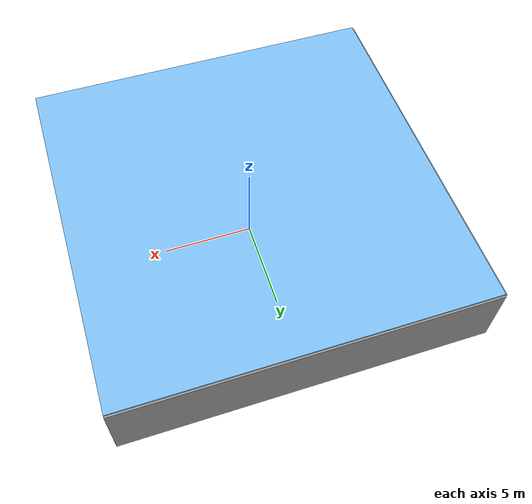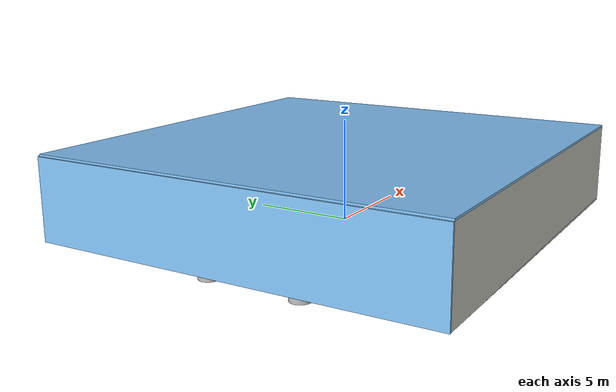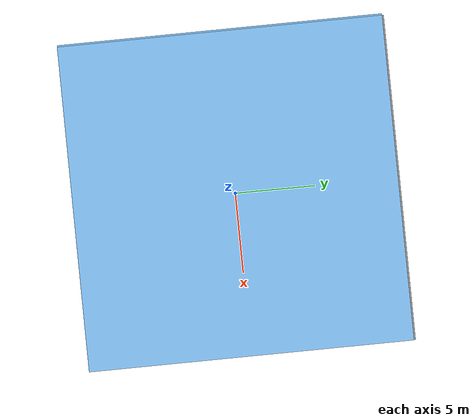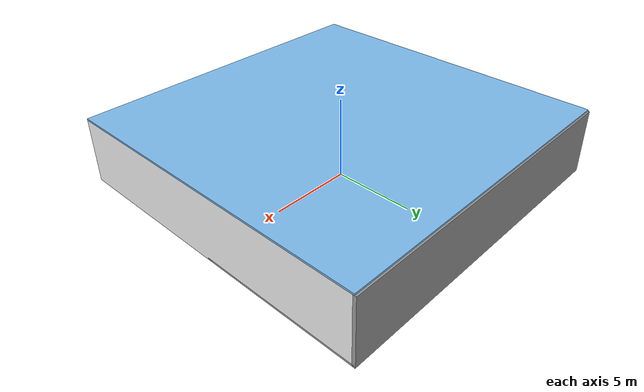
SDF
<sdf version="1.4">
 <world name="default">
  <physics type="ode">
   <max_step_size>0.001</max_step_size>
   <real_time_factor>1</real_time_factor>
   <real_time_update_rate>1000</real_time_update_rate>
   <gravity>0 0 -9.8</gravity>
  </physics>
  <scene><ambient>0.4 0.4 0.4 1</ambient><background>0.7 0.7 0.7 1</background><shadows>1</shadows></scene>
  <model name="Surrounding">
   <static>1</static>
   <link name="Ceiling">
    <collision name="Ceiling_Collision"><geometry><box><size>20 20 0.1</size></box></geometry></collision>
    <visual name="Ceiling_Visual">
     <geometry><box><size>20 20 0.1</size></box></geometry>
     <material>
      <script><uri>file://media/materials/scripts/gazebo.material</uri><name>Gazebo/SkyBlue</name></script>
     </material>
    </visual>
    <pose>0 0 4.05 0 0 0</pose>
   </link>
   <link name="Wall_South">
    <collision name="Wall_South_Collision">
     <geometry><box><size>20 0 4</size></box></geometry>
     <pose>0 0 2 0 -0 0</pose>
    </collision>
    <visual name="Wall_South_Visual">
     <pose>0 0 2 0 -0 0</pose>
     <geometry><box><size>20 0 4</size></box></geometry>
     <material>
      <script><uri>file://media/materials/scripts/gazebo.material</uri><name>Gazebo/PaintedWall</name></script>
     </material>
    </visual>
    <velocity_decay><linear>0</linear><angular>0</angular></velocity_decay>
    <pose>0 -10 0 0 -0 0</pose>
   </link>
   <link name="Wall_East">
    <collision name="Wall_21_Collision">
     <geometry><box><size>20 0 4</size></box></geometry>
     <pose>0 0 2 0 -0 0</pose>
    </collision>
    <visual name="Wall_21_Visual">
     <pose>0 0 2 0 -0 0</pose>
     <geometry><box><size>20 0 4</size></box></geometry>
     <material>
      <script><uri>file://media/materials/scripts/gazebo.material</uri><name>Gazebo/White</name></script>
     </material>
    </visual>
    <velocity_decay><linear>0</linear><angular>0</angular></velocity_decay>
    <pose>10 0 0 0 -0 1.5708</pose>
   </link>
   <link name="Wall_North">
    <collision name="Wall_22_Collision">
     <geometry><box><size>20 0.2 4</size></box></geometry>
     <pose>0 0 2 0 -0 0</pose>
    </collision>
    <visual name="Wall_22_Visual">
     <pose>0 0 2 0 -0 0</pose>
     <geometry><box><size>20 0.2 4</size></box></geometry>
     <material>
      <script><uri>file://media/materials/scripts/gazebo.material</uri><name>Gazebo/GreyGradientSky</name></script>
     </material>
    </visual>
    <velocity_decay><linear>0</linear><angular>0</angular></velocity_decay>
    <pose>0 10 0 0 -0 0</pose>
   </link>
   <link name="Wall_West">
    <collision name="Wall_23_Collision">
     <geometry><box><size>20 0.2 4</size></box></geometry>
     <pose>0 0 2 0 -0 0</pose>
    </collision>
    <visual name="Wall_23_Visual">
     <pose>0 0 2 0 -0 0</pose>
     <geometry><box><size>20 0.2 4</size></box></geometry>
     <material>
      <script><uri>file://media/materials/scripts/gazebo.material</uri><name>Gazebo/SkyBlue</name></script>
     </material>
    </visual>
    <velocity_decay><linear>0</linear><angular>0</angular></velocity_decay>
    <pose>-10 0 0 0 0 -1.5708</pose>
   </link>
   <link name="Ground_link">
    <collision name="collision">
     <pose>0 0 .05 0 -0 0</pose>
     <geometry><box><size>20 20 0.1</size></box></geometry>
    </collision>
    <visual name="visual">
     <pose>0 0 .05 0 -0 0</pose>
     <geometry><box><size>20 20 0.1</size></box></geometry>
     <material>
      <script><uri>file://media/materials/scripts/gazebo.material</uri><name>Gazebo/Pioneer2Body</name></script>
     </material>
    </visual>
   </link>
   <static>1</static>
  </model>
  <spherical_coordinates>
   <surface_model>EARTH_WGS84</surface_model>
   <latitude_deg>0</latitude_deg>
   <longitude_deg>0</longitude_deg>
   <elevation>0</elevation>
   <heading_deg>0</heading_deg>
  </spherical_coordinates>
  <light name="lightball_0" type="diffuse">
   <diffuse>0.8 0.8 0.8 1</diffuse>
   <specular>0.2 0.2 0.2 1</specular>
   <attenuation>
    <range>100</range>
    <constant>0.7</constant>
    <linear>0.01</linear>
    <quadratic>0.001</quadratic>
   </attenuation>
   <direction>-0.5 0.1 -0.9</direction>
   <pose>9.4064352724 -4.30691410417 3.50848807262 0 0 0</pose>
  </light>
  <light name="lightball_1" type="diffuse">
   <diffuse>0.8 0.8 0.8 1</diffuse>
   <specular>0.2 0.2 0.2 1</specular>
   <attenuation>
    <range>100</range>
    <constant>0.7</constant>
    <linear>0.01</linear>
    <quadratic>0.001</quadratic>
   </attenuation>
   <direction>-0.5 0.1 -0.9</direction>
   <pose>-3.60749167911 -9.89305549551 2.10619852579 0 0 0</pose>
  </light>
  <light name="lightball_2" type="diffuse">
   <diffuse>0.8 0.8 0.8 1</diffuse>
   <specular>0.2 0.2 0.2 1</specular>
   <attenuation>
    <range>100</range>
    <constant>0.7</constant>
    <linear>0.01</linear>
    <quadratic>0.001</quadratic>
   </attenuation>
   <direction>-0.5 0.1 -0.9</direction>
   <pose>-0.595712380519 3.15574577899 0.684177313892 0 0 0</pose>
  </light>
  <light name="lightball_3" type="diffuse">
   <diffuse>0.8 0.8 0.8 1</diffuse>
   <specular>0.2 0.2 0.2 1</specular>
   <attenuation>
    <range>100</range>
    <constant>0.7</constant>
    <linear>0.01</linear>
    <quadratic>0.001</quadratic>
   </attenuation>
   <direction>-0.5 0.1 -0.9</direction>
   <pose>5.2581092151 6.96199915286 1.08074415289 0 0 0</pose>
  </light>
  <light name="lightball_4" type="diffuse">
   <diffuse>0.8 0.8 0.8 1</diffuse>
   <specular>0.2 0.2 0.2 1</specular>
   <attenuation>
    <range>100</range>
    <constant>0.7</constant>
    <linear>0.01</linear>
    <quadratic>0.001</quadratic>
   </attenuation>
   <direction>-0.5 0.1 -0.9</direction>
   <pose>-4.78838077839 -5.62146463617 3.80996129651 0 0 0</pose>
  </light>
  <light name="lightball_5" type="diffuse">
   <diffuse>0.8 0.8 0.8 1</diffuse>
   <specular>0.2 0.2 0.2 1</specular>
   <attenuation>
    <range>100</range>
    <constant>0.7</constant>
    <linear>0.01</linear>
    <quadratic>0.001</quadratic>
   </attenuation>
   <direction>-0.5 0.1 -0.9</direction>
   <pose>3.7934564721 -5.93888340797 3.28527261112 0 0 0</pose>
  </light>
  <include>
   <uri>model://textured_shapes</uri>
   <pose>-8.63340612645 -4.69822662674 0 0 0 0.30069136335</pose>
  </include>
  <include>
   <uri>model://textured_shapes</uri>
   <pose>-8.07186379812 2.59532366182 0 0 0 2.51028070314</pose>
  </include>
  <include><uri>model://table</uri><pose>-6.49885902857 4.69568456394 0 0 0 0.832092190002</pose></include>
 </world>
</sdf>

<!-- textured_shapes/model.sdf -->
<sdf version="1.6">
  <model name="textured_shapes">
    <pose>0 0 0.5 0 0 0</pose>
    <link name="box">
      <pose>0 -1.5 0 0 0 0</pose>
      <collision name="collision">
        <geometry>
          <box>
            <size>1 1 1</size>
          </box>
        </geometry>
      </collision>
      <visual name="visual">
        <geometry>
          <box>
            <size>1 1 1</size>
          </box>
        </geometry>
        <material>
          <script>
            <uri>model://../model_source/models/textured_shapes/materials/scripts</uri>
            <uri>model://../model_source/models/textured_shapes/materials/textures</uri>
            <name>TexturedShape/Squares</name>
          </script>
        </material>
      </visual>
    </link>
    <link name="sphere">
      <collision name="collision">
        <geometry>
          <sphere>
            <radius>0.5</radius>
          </sphere>
        </geometry>
      </collision>
      <visual name="visual">
        <geometry>
          <sphere>
            <radius>0.5</radius>
          </sphere>
        </geometry>
        <material>
          <script>
            <uri>model://../model_source/models/textured_shapes/materials/scripts</uri>
            <uri>model://../model_source/models/textured_shapes/materials/textures</uri>
            <name>TexturedShape/Squares</name>
          </script>
        </material>
      </visual>
    </link>
    <link name="cylinder">
      <pose>0 1.5 0 0 0 0</pose>
      <collision name="collision">
        <geometry>
          <cylinder>
            <radius>0.5</radius>
            <length>1</length>
          </cylinder>
        </geometry>
      </collision>
      <visual name="visual">
        <geometry>
          <cylinder>
            <radius>0.5</radius>
            <length>1</length>
          </cylinder>
        </geometry>
        <material>
          <script>
            <uri>model://../model_source/models/textured_shapes/materials/scripts</uri>
            <uri>model://../model_source/models/textured_shapes/materials/textures</uri>
            <name>TexturedShape/Squares</name>
          </script>
        </material>
      </visual>
    </link>
  </model>
</sdf>

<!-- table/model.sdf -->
<sdf version="1.5">
  <model name="table">
    <static>true</static>
    <link name="link">
      <collision name="surface">
        <pose>0 0 1.0 0 0 0</pose>
        <geometry>
          <box>
            <size>1.5 0.8 0.03</size>
          </box>
        </geometry>
        <surface>
          <friction>
            <ode>
              <mu>0.6</mu>
              <mu2>0.6</mu2>
            </ode>
          </friction>
        </surface>
      </collision>
      <visual name="visual1">
        <pose>0 0 1.0 0 0 0</pose>
        <geometry>
          <box>
            <size>1.5 0.8 0.03</size>
          </box>
        </geometry>
        <material>
          <script>
            <uri>model://media/materials/scripts/gazebo.material</uri>
            <name>Gazebo/Wood</name>
          </script>
        </material>
      </visual>
      <collision name="front_left_leg">
        <pose>0.68 0.38 0.5 0 0 0</pose>
        <geometry>
          <cylinder>
            <radius>0.02</radius>
            <length>1.0</length>
          </cylinder>
        </geometry>
      </collision>
      <visual name="front_left_leg">
        <pose>0.68 0.38 0.5 0 0 0</pose>
        <geometry>
          <cylinder>
            <radius>0.02</radius>
            <length>1.0</length>
          </cylinder>
        </geometry>
        <material>
          <script>
            <uri>model://media/materials/scripts/gazebo.material</uri>
            <name>Gazebo/Grey</name>
          </script>
        </material>
      </visual>
      <collision name="front_right_leg">
        <pose>0.68 -0.38 0.5 0 0 0</pose>
        <geometry>
          <cylinder>
            <radius>0.02</radius>
            <length>1.0</length>
          </cylinder>
        </geometry>
      </collision>
      <visual name="front_right_leg">
        <pose>0.68 -0.38 0.5 0 0 0</pose>
        <geometry>
          <cylinder>
            <radius>0.02</radius>
            <length>1.0</length>
          </cylinder>
        </geometry>
        <material>
          <script>
            <uri>model://media/materials/scripts/gazebo.material</uri>
            <name>Gazebo/Grey</name>
          </script>
        </material>
      </visual>
      <collision name="back_right_leg">
        <pose>-0.68 -0.38 0.5 0 0 0</pose>
        <geometry>
          <cylinder>
            <radius>0.02</radius>
            <length>1.0</length>
          </cylinder>
        </geometry>
      </collision>
      <visual name="back_right_leg">
        <pose>-0.68 -0.38 0.5 0 0 0</pose>
        <geometry>
          <cylinder>
            <radius>0.02</radius>
            <length>1.0</length>
          </cylinder>
        </geometry>
        <material>
          <script>
            <uri>model://media/materials/scripts/gazebo.material</uri>
            <name>Gazebo/Grey</name>
          </script>
        </material>
      </visual>
      <collision name="back_left_leg">
        <pose>-0.68 0.38 0.5 0 0 0</pose>
        <geometry>
          <cylinder>
            <radius>0.02</radius>
            <length>1.0</length>
          </cylinder>
        </geometry>
      </collision>
      <visual name="back_left_leg">
        <pose>-0.68 0.38 0.5 0 0 0</pose>
        <geometry>
          <cylinder>
            <radius>0.02</radius>
            <length>1.0</length>
          </cylinder>
        </geometry>
        <material>
          <script>
            <uri>model://media/materials/scripts/gazebo.material</uri>
            <name>Gazebo/Grey</name>
          </script>
        </material>
      </visual>
    </link>
  </model>
</sdf>
